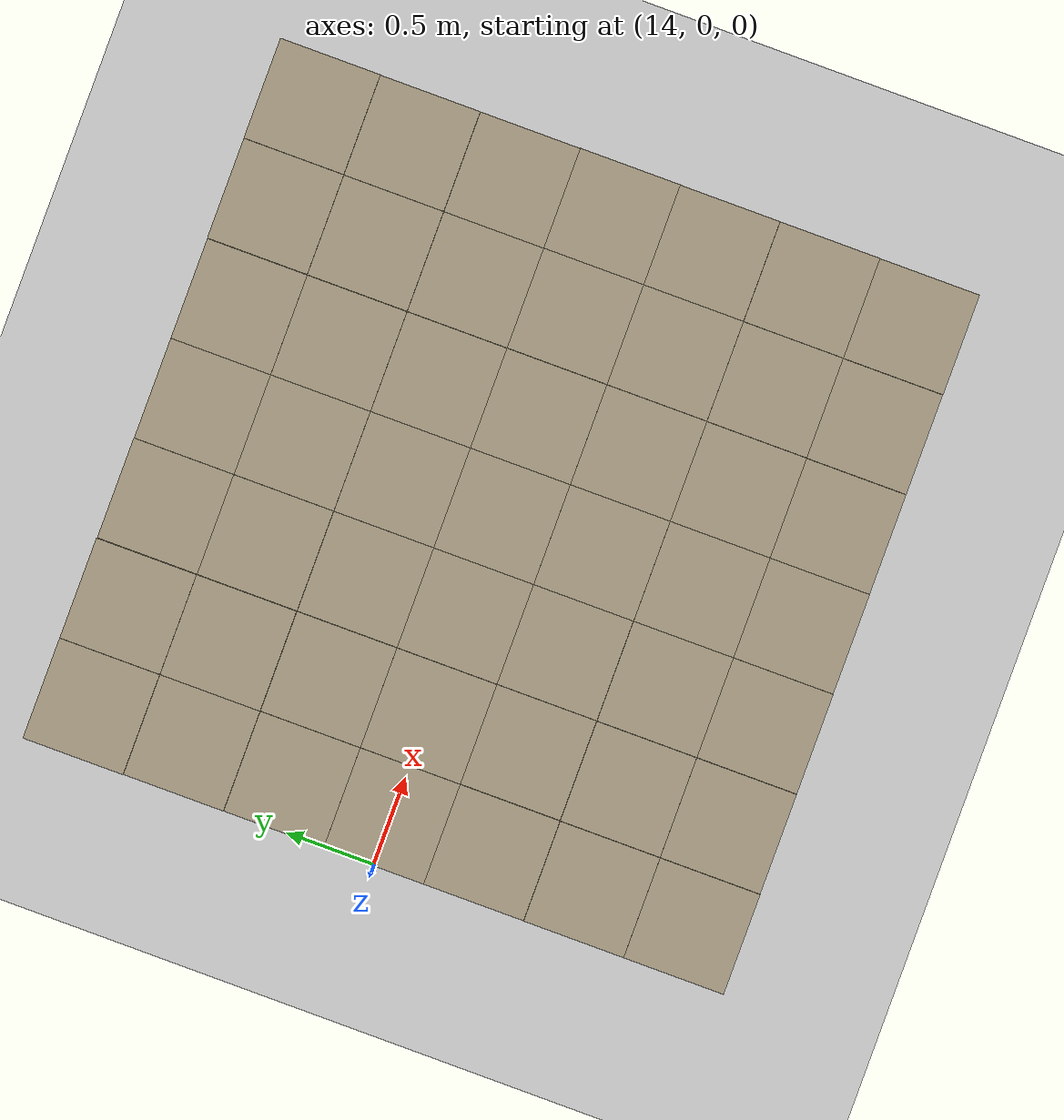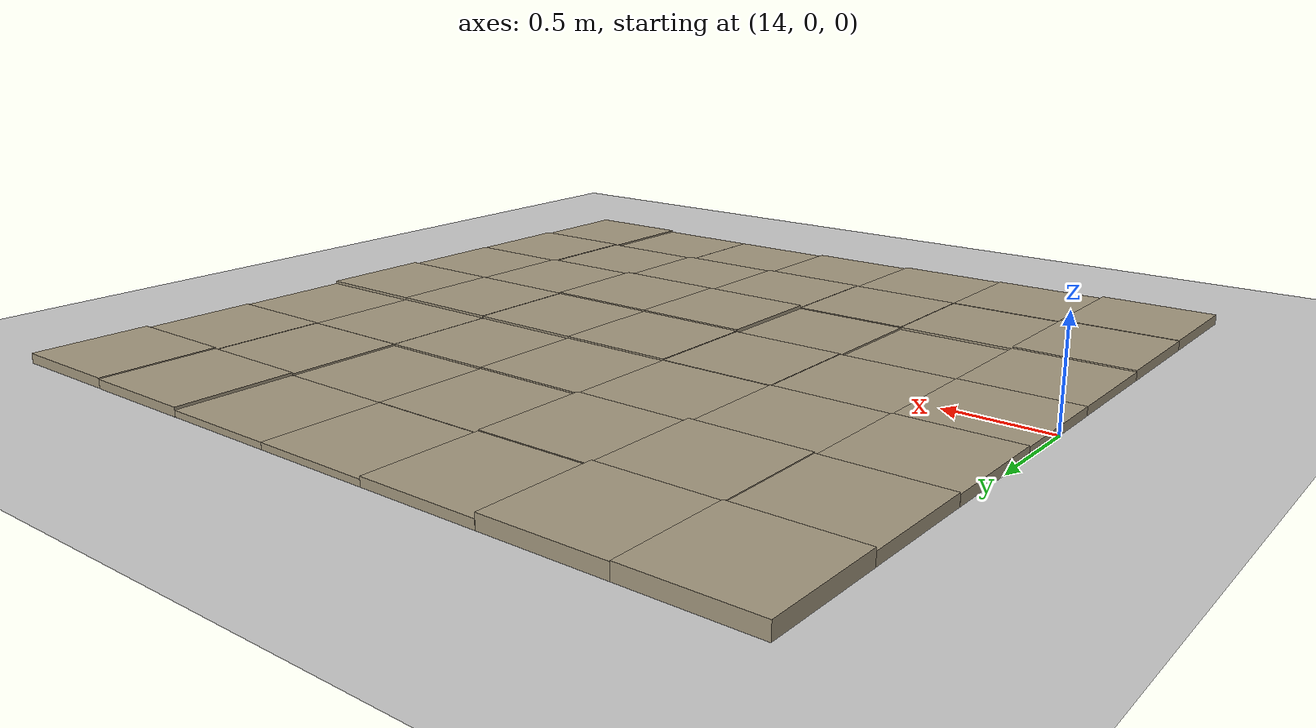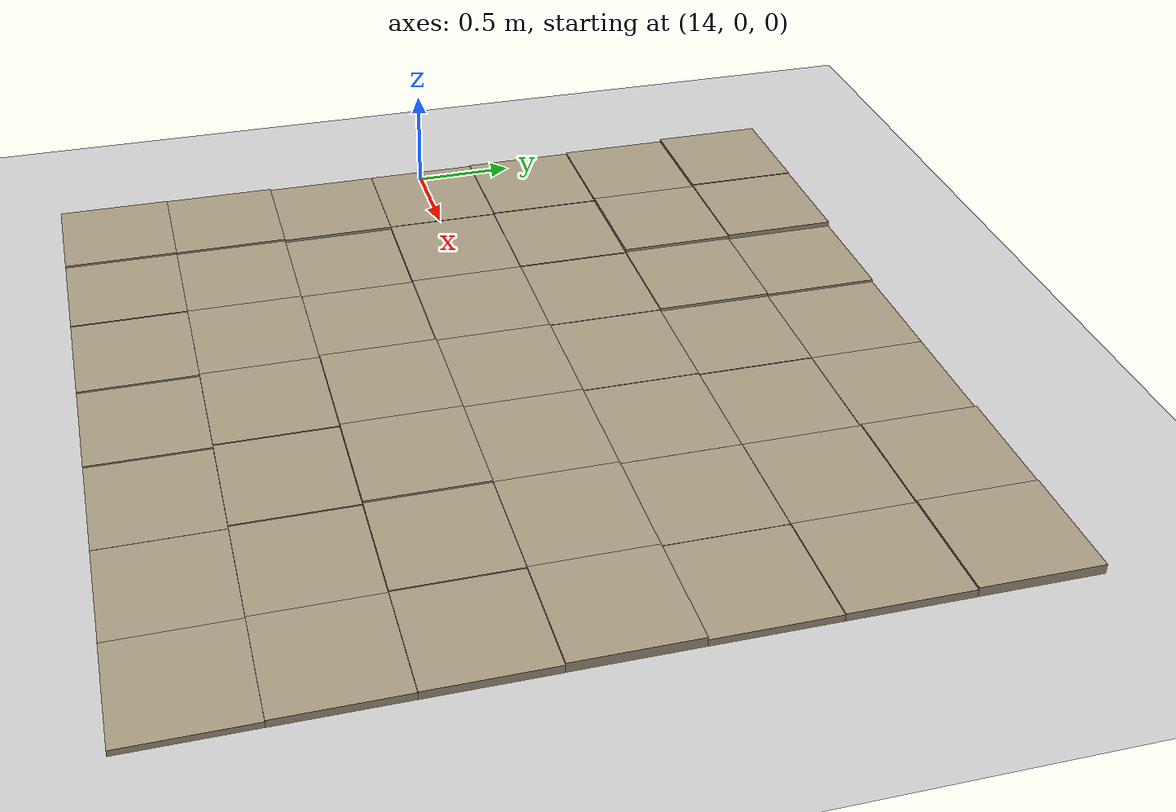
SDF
<sdf version="1.8">
 <world name="go2_rl">
  <model name="ground_plane">
   <static>true</static>
   <link name="link">
    <collision name="collision">
     <geometry><plane><normal>0 0 1</normal><size>200 200</size></plane></geometry>
     <surface><friction><ode><mu>1.0</mu><mu2>1.0</mu2></ode></friction></surface>
    </collision>
    <visual name="visual">
     <geometry><plane><normal>0 0 1</normal><size>200 200</size></plane></geometry>
     <material><ambient>0.8 0.8 0.8 1</ambient><diffuse>0.8 0.8 0.8 1</diffuse></material>
    </visual>
   </link>
  </model>
  <model name="rough_patch">
   <static>true</static>
   <link name="bump_0_0">
    <pose>14.286 -1.714 0.025 0 0 0</pose>
    <collision name="collision">
     <geometry><box><size>0.571 0.571 0.050</size></box></geometry>
     <surface><friction><ode><mu>1.0</mu><mu2>1.0</mu2></ode></friction></surface>
    </collision>
    <visual name="visual">
     <geometry><box><size>0.571 0.571 0.050</size></box></geometry>
     <material><ambient>0.65 0.6 0.5 1</ambient><diffuse>0.65 0.6 0.5 1</diffuse></material>
    </visual>
   </link>
   <link name="bump_0_1">
    <pose>14.286 -1.143 0.024 0 0 0</pose>
    <collision name="collision">
     <geometry><box><size>0.571 0.571 0.048</size></box></geometry>
     <surface><friction><ode><mu>1.0</mu><mu2>1.0</mu2></ode></friction></surface>
    </collision>
    <visual name="visual">
     <geometry><box><size>0.571 0.571 0.048</size></box></geometry>
     <material><ambient>0.65 0.6 0.5 1</ambient><diffuse>0.65 0.6 0.5 1</diffuse></material>
    </visual>
   </link>
   <link name="bump_0_2">
    <pose>14.286 -0.571 0.021 0 0 0</pose>
    <collision name="collision">
     <geometry><box><size>0.571 0.571 0.041</size></box></geometry>
     <surface><friction><ode><mu>1.0</mu><mu2>1.0</mu2></ode></friction></surface>
    </collision>
    <visual name="visual">
     <geometry><box><size>0.571 0.571 0.041</size></box></geometry>
     <material><ambient>0.65 0.6 0.5 1</ambient><diffuse>0.65 0.6 0.5 1</diffuse></material>
    </visual>
   </link>
   <link name="bump_0_3">
    <pose>14.286 0.000 0.021 0 0 0</pose>
    <collision name="collision">
     <geometry><box><size>0.571 0.571 0.043</size></box></geometry>
     <surface><friction><ode><mu>1.0</mu><mu2>1.0</mu2></ode></friction></surface>
    </collision>
    <visual name="visual">
     <geometry><box><size>0.571 0.571 0.043</size></box></geometry>
     <material><ambient>0.65 0.6 0.5 1</ambient><diffuse>0.65 0.6 0.5 1</diffuse></material>
    </visual>
   </link>
   <link name="bump_0_4">
    <pose>14.286 0.571 0.024 0 0 0</pose>
    <collision name="collision">
     <geometry><box><size>0.571 0.571 0.048</size></box></geometry>
     <surface><friction><ode><mu>1.0</mu><mu2>1.0</mu2></ode></friction></surface>
    </collision>
    <visual name="visual">
     <geometry><box><size>0.571 0.571 0.048</size></box></geometry>
     <material><ambient>0.65 0.6 0.5 1</ambient><diffuse>0.65 0.6 0.5 1</diffuse></material>
    </visual>
   </link>
   <link name="bump_0_5">
    <pose>14.286 1.143 0.028 0 0 0</pose>
    <collision name="collision">
     <geometry><box><size>0.571 0.571 0.055</size></box></geometry>
     <surface><friction><ode><mu>1.0</mu><mu2>1.0</mu2></ode></friction></surface>
    </collision>
    <visual name="visual">
     <geometry><box><size>0.571 0.571 0.055</size></box></geometry>
     <material><ambient>0.65 0.6 0.5 1</ambient><diffuse>0.65 0.6 0.5 1</diffuse></material>
    </visual>
   </link>
   <link name="bump_0_6">
    <pose>14.286 1.714 0.035 0 0 0</pose>
    <collision name="collision">
     <geometry><box><size>0.571 0.571 0.070</size></box></geometry>
     <surface><friction><ode><mu>1.0</mu><mu2>1.0</mu2></ode></friction></surface>
    </collision>
    <visual name="visual">
     <geometry><box><size>0.571 0.571 0.070</size></box></geometry>
     <material><ambient>0.65 0.6 0.5 1</ambient><diffuse>0.65 0.6 0.5 1</diffuse></material>
    </visual>
   </link>
   <link name="bump_1_0">
    <pose>14.857 -1.714 0.020 0 0 0</pose>
    <collision name="collision">
     <geometry><box><size>0.571 0.571 0.040</size></box></geometry>
     <surface><friction><ode><mu>1.0</mu><mu2>1.0</mu2></ode></friction></surface>
    </collision>
    <visual name="visual">
     <geometry><box><size>0.571 0.571 0.040</size></box></geometry>
     <material><ambient>0.65 0.6 0.5 1</ambient><diffuse>0.65 0.6 0.5 1</diffuse></material>
    </visual>
   </link>
   <link name="bump_1_1">
    <pose>14.857 -1.143 0.019 0 0 0</pose>
    <collision name="collision">
     <geometry><box><size>0.571 0.571 0.038</size></box></geometry>
     <surface><friction><ode><mu>1.0</mu><mu2>1.0</mu2></ode></friction></surface>
    </collision>
    <visual name="visual">
     <geometry><box><size>0.571 0.571 0.038</size></box></geometry>
     <material><ambient>0.65 0.6 0.5 1</ambient><diffuse>0.65 0.6 0.5 1</diffuse></material>
    </visual>
   </link>
   <link name="bump_1_2">
    <pose>14.857 -0.571 0.014 0 0 0</pose>
    <collision name="collision">
     <geometry><box><size>0.571 0.571 0.027</size></box></geometry>
     <surface><friction><ode><mu>1.0</mu><mu2>1.0</mu2></ode></friction></surface>
    </collision>
    <visual name="visual">
     <geometry><box><size>0.571 0.571 0.027</size></box></geometry>
     <material><ambient>0.65 0.6 0.5 1</ambient><diffuse>0.65 0.6 0.5 1</diffuse></material>
    </visual>
   </link>
   <link name="bump_1_3">
    <pose>14.857 0.000 0.020 0 0 0</pose>
    <collision name="collision">
     <geometry><box><size>0.571 0.571 0.040</size></box></geometry>
     <surface><friction><ode><mu>1.0</mu><mu2>1.0</mu2></ode></friction></surface>
    </collision>
    <visual name="visual">
     <geometry><box><size>0.571 0.571 0.040</size></box></geometry>
     <material><ambient>0.65 0.6 0.5 1</ambient><diffuse>0.65 0.6 0.5 1</diffuse></material>
    </visual>
   </link>
   <link name="bump_1_4">
    <pose>14.857 0.571 0.022 0 0 0</pose>
    <collision name="collision">
     <geometry><box><size>0.571 0.571 0.045</size></box></geometry>
     <surface><friction><ode><mu>1.0</mu><mu2>1.0</mu2></ode></friction></surface>
    </collision>
    <visual name="visual">
     <geometry><box><size>0.571 0.571 0.045</size></box></geometry>
     <material><ambient>0.65 0.6 0.5 1</ambient><diffuse>0.65 0.6 0.5 1</diffuse></material>
    </visual>
   </link>
   <link name="bump_1_5">
    <pose>14.857 1.143 0.030 0 0 0</pose>
    <collision name="collision">
     <geometry><box><size>0.571 0.571 0.060</size></box></geometry>
     <surface><friction><ode><mu>1.0</mu><mu2>1.0</mu2></ode></friction></surface>
    </collision>
    <visual name="visual">
     <geometry><box><size>0.571 0.571 0.060</size></box></geometry>
     <material><ambient>0.65 0.6 0.5 1</ambient><diffuse>0.65 0.6 0.5 1</diffuse></material>
    </visual>
   </link>
   <link name="bump_1_6">
    <pose>14.857 1.714 0.033 0 0 0</pose>
    <collision name="collision">
     <geometry><box><size>0.571 0.571 0.066</size></box></geometry>
     <surface><friction><ode><mu>1.0</mu><mu2>1.0</mu2></ode></friction></surface>
    </collision>
    <visual name="visual">
     <geometry><box><size>0.571 0.571 0.066</size></box></geometry>
     <material><ambient>0.65 0.6 0.5 1</ambient><diffuse>0.65 0.6 0.5 1</diffuse></material>
    </visual>
   </link>
   <link name="bump_2_0">
    <pose>15.429 -1.714 0.018 0 0 0</pose>
    <collision name="collision">
     <geometry><box><size>0.571 0.571 0.036</size></box></geometry>
     <surface><friction><ode><mu>1.0</mu><mu2>1.0</mu2></ode></friction></surface>
    </collision>
    <visual name="visual">
     <geometry><box><size>0.571 0.571 0.036</size></box></geometry>
     <material><ambient>0.65 0.6 0.5 1</ambient><diffuse>0.65 0.6 0.5 1</diffuse></material>
    </visual>
   </link>
   <link name="bump_2_1">
    <pose>15.429 -1.143 0.020 0 0 0</pose>
    <collision name="collision">
     <geometry><box><size>0.571 0.571 0.040</size></box></geometry>
     <surface><friction><ode><mu>1.0</mu><mu2>1.0</mu2></ode></friction></surface>
    </collision>
    <visual name="visual">
     <geometry><box><size>0.571 0.571 0.040</size></box></geometry>
     <material><ambient>0.65 0.6 0.5 1</ambient><diffuse>0.65 0.6 0.5 1</diffuse></material>
    </visual>
   </link>
   <link name="bump_2_2">
    <pose>15.429 -0.571 0.018 0 0 0</pose>
    <collision name="collision">
     <geometry><box><size>0.571 0.571 0.035</size></box></geometry>
     <surface><friction><ode><mu>1.0</mu><mu2>1.0</mu2></ode></friction></surface>
    </collision>
    <visual name="visual">
     <geometry><box><size>0.571 0.571 0.035</size></box></geometry>
     <material><ambient>0.65 0.6 0.5 1</ambient><diffuse>0.65 0.6 0.5 1</diffuse></material>
    </visual>
   </link>
   <link name="bump_2_3">
    <pose>15.429 0.000 0.021 0 0 0</pose>
    <collision name="collision">
     <geometry><box><size>0.571 0.571 0.043</size></box></geometry>
     <surface><friction><ode><mu>1.0</mu><mu2>1.0</mu2></ode></friction></surface>
    </collision>
    <visual name="visual">
     <geometry><box><size>0.571 0.571 0.043</size></box></geometry>
     <material><ambient>0.65 0.6 0.5 1</ambient><diffuse>0.65 0.6 0.5 1</diffuse></material>
    </visual>
   </link>
   <link name="bump_2_4">
    <pose>15.429 0.571 0.020 0 0 0</pose>
    <collision name="collision">
     <geometry><box><size>0.571 0.571 0.041</size></box></geometry>
     <surface><friction><ode><mu>1.0</mu><mu2>1.0</mu2></ode></friction></surface>
    </collision>
    <visual name="visual">
     <geometry><box><size>0.571 0.571 0.041</size></box></geometry>
     <material><ambient>0.65 0.6 0.5 1</ambient><diffuse>0.65 0.6 0.5 1</diffuse></material>
    </visual>
   </link>
   <link name="bump_2_5">
    <pose>15.429 1.143 0.023 0 0 0</pose>
    <collision name="collision">
     <geometry><box><size>0.571 0.571 0.046</size></box></geometry>
     <surface><friction><ode><mu>1.0</mu><mu2>1.0</mu2></ode></friction></surface>
    </collision>
    <visual name="visual">
     <geometry><box><size>0.571 0.571 0.046</size></box></geometry>
     <material><ambient>0.65 0.6 0.5 1</ambient><diffuse>0.65 0.6 0.5 1</diffuse></material>
    </visual>
   </link>
   <link name="bump_2_6">
    <pose>15.429 1.714 0.021 0 0 0</pose>
    <collision name="collision">
     <geometry><box><size>0.571 0.571 0.042</size></box></geometry>
     <surface><friction><ode><mu>1.0</mu><mu2>1.0</mu2></ode></friction></surface>
    </collision>
    <visual name="visual">
     <geometry><box><size>0.571 0.571 0.042</size></box></geometry>
     <material><ambient>0.65 0.6 0.5 1</ambient><diffuse>0.65 0.6 0.5 1</diffuse></material>
    </visual>
   </link>
   <link name="bump_3_0">
    <pose>16.000 -1.714 0.014 0 0 0</pose>
    <collision name="collision">
     <geometry><box><size>0.571 0.571 0.027</size></box></geometry>
     <surface><friction><ode><mu>1.0</mu><mu2>1.0</mu2></ode></friction></surface>
    </collision>
    <visual name="visual">
     <geometry><box><size>0.571 0.571 0.027</size></box></geometry>
     <material><ambient>0.65 0.6 0.5 1</ambient><diffuse>0.65 0.6 0.5 1</diffuse></material>
    </visual>
   </link>
   <link name="bump_3_1">
    <pose>16.000 -1.143 0.021 0 0 0</pose>
    <collision name="collision">
     <geometry><box><size>0.571 0.571 0.042</size></box></geometry>
     <surface><friction><ode><mu>1.0</mu><mu2>1.0</mu2></ode></friction></surface>
    </collision>
    <visual name="visual">
     <geometry><box><size>0.571 0.571 0.042</size></box></geometry>
     <material><ambient>0.65 0.6 0.5 1</ambient><diffuse>0.65 0.6 0.5 1</diffuse></material>
    </visual>
   </link>
   <link name="bump_3_2">
    <pose>16.000 -0.571 0.026 0 0 0</pose>
    <collision name="collision">
     <geometry><box><size>0.571 0.571 0.053</size></box></geometry>
     <surface><friction><ode><mu>1.0</mu><mu2>1.0</mu2></ode></friction></surface>
    </collision>
    <visual name="visual">
     <geometry><box><size>0.571 0.571 0.053</size></box></geometry>
     <material><ambient>0.65 0.6 0.5 1</ambient><diffuse>0.65 0.6 0.5 1</diffuse></material>
    </visual>
   </link>
   <link name="bump_3_3">
    <pose>16.000 0.000 0.023 0 0 0</pose>
    <collision name="collision">
     <geometry><box><size>0.571 0.571 0.046</size></box></geometry>
     <surface><friction><ode><mu>1.0</mu><mu2>1.0</mu2></ode></friction></surface>
    </collision>
    <visual name="visual">
     <geometry><box><size>0.571 0.571 0.046</size></box></geometry>
     <material><ambient>0.65 0.6 0.5 1</ambient><diffuse>0.65 0.6 0.5 1</diffuse></material>
    </visual>
   </link>
   <link name="bump_3_4">
    <pose>16.000 0.571 0.019 0 0 0</pose>
    <collision name="collision">
     <geometry><box><size>0.571 0.571 0.038</size></box></geometry>
     <surface><friction><ode><mu>1.0</mu><mu2>1.0</mu2></ode></friction></surface>
    </collision>
    <visual name="visual">
     <geometry><box><size>0.571 0.571 0.038</size></box></geometry>
     <material><ambient>0.65 0.6 0.5 1</ambient><diffuse>0.65 0.6 0.5 1</diffuse></material>
    </visual>
   </link>
   <link name="bump_3_5">
    <pose>16.000 1.143 0.016 0 0 0</pose>
    <collision name="collision">
     <geometry><box><size>0.571 0.571 0.031</size></box></geometry>
     <surface><friction><ode><mu>1.0</mu><mu2>1.0</mu2></ode></friction></surface>
    </collision>
    <visual name="visual">
     <geometry><box><size>0.571 0.571 0.031</size></box></geometry>
     <material><ambient>0.65 0.6 0.5 1</ambient><diffuse>0.65 0.6 0.5 1</diffuse></material>
    </visual>
   </link>
   <link name="bump_3_6">
    <pose>16.000 1.714 0.015 0 0 0</pose>
    <collision name="collision">
     <geometry><box><size>0.571 0.571 0.030</size></box></geometry>
     <surface><friction><ode><mu>1.0</mu><mu2>1.0</mu2></ode></friction></surface>
    </collision>
    <visual name="visual">
     <geometry><box><size>0.571 0.571 0.030</size></box></geometry>
     <material><ambient>0.65 0.6 0.5 1</ambient><diffuse>0.65 0.6 0.5 1</diffuse></material>
    </visual>
   </link>
   <link name="bump_4_0">
    <pose>16.571 -1.714 0.010 0 0 0</pose>
    <collision name="collision">
     <geometry><box><size>0.571 0.571 0.020</size></box></geometry>
     <surface><friction><ode><mu>1.0</mu><mu2>1.0</mu2></ode></friction></surface>
    </collision>
    <visual name="visual">
     <geometry><box><size>0.571 0.571 0.020</size></box></geometry>
     <material><ambient>0.65 0.6 0.5 1</ambient><diffuse>0.65 0.6 0.5 1</diffuse></material>
    </visual>
   </link>
   <link name="bump_4_1">
    <pose>16.571 -1.143 0.019 0 0 0</pose>
    <collision name="collision">
     <geometry><box><size>0.571 0.571 0.037</size></box></geometry>
     <surface><friction><ode><mu>1.0</mu><mu2>1.0</mu2></ode></friction></surface>
    </collision>
    <visual name="visual">
     <geometry><box><size>0.571 0.571 0.037</size></box></geometry>
     <material><ambient>0.65 0.6 0.5 1</ambient><diffuse>0.65 0.6 0.5 1</diffuse></material>
    </visual>
   </link>
   <link name="bump_4_2">
    <pose>16.571 -0.571 0.026 0 0 0</pose>
    <collision name="collision">
     <geometry><box><size>0.571 0.571 0.053</size></box></geometry>
     <surface><friction><ode><mu>1.0</mu><mu2>1.0</mu2></ode></friction></surface>
    </collision>
    <visual name="visual">
     <geometry><box><size>0.571 0.571 0.053</size></box></geometry>
     <material><ambient>0.65 0.6 0.5 1</ambient><diffuse>0.65 0.6 0.5 1</diffuse></material>
    </visual>
   </link>
   <link name="bump_4_3">
    <pose>16.571 0.000 0.023 0 0 0</pose>
    <collision name="collision">
     <geometry><box><size>0.571 0.571 0.046</size></box></geometry>
     <surface><friction><ode><mu>1.0</mu><mu2>1.0</mu2></ode></friction></surface>
    </collision>
    <visual name="visual">
     <geometry><box><size>0.571 0.571 0.046</size></box></geometry>
     <material><ambient>0.65 0.6 0.5 1</ambient><diffuse>0.65 0.6 0.5 1</diffuse></material>
    </visual>
   </link>
   <link name="bump_4_4">
    <pose>16.571 0.571 0.018 0 0 0</pose>
    <collision name="collision">
     <geometry><box><size>0.571 0.571 0.035</size></box></geometry>
     <surface><friction><ode><mu>1.0</mu><mu2>1.0</mu2></ode></friction></surface>
    </collision>
    <visual name="visual">
     <geometry><box><size>0.571 0.571 0.035</size></box></geometry>
     <material><ambient>0.65 0.6 0.5 1</ambient><diffuse>0.65 0.6 0.5 1</diffuse></material>
    </visual>
   </link>
   <link name="bump_4_5">
    <pose>16.571 1.143 0.014 0 0 0</pose>
    <collision name="collision">
     <geometry><box><size>0.571 0.571 0.028</size></box></geometry>
     <surface><friction><ode><mu>1.0</mu><mu2>1.0</mu2></ode></friction></surface>
    </collision>
    <visual name="visual">
     <geometry><box><size>0.571 0.571 0.028</size></box></geometry>
     <material><ambient>0.65 0.6 0.5 1</ambient><diffuse>0.65 0.6 0.5 1</diffuse></material>
    </visual>
   </link>
   <link name="bump_4_6">
    <pose>16.571 1.714 0.015 0 0 0</pose>
    <collision name="collision">
     <geometry><box><size>0.571 0.571 0.030</size></box></geometry>
     <surface><friction><ode><mu>1.0</mu><mu2>1.0</mu2></ode></friction></surface>
    </collision>
    <visual name="visual">
     <geometry><box><size>0.571 0.571 0.030</size></box></geometry>
     <material><ambient>0.65 0.6 0.5 1</ambient><diffuse>0.65 0.6 0.5 1</diffuse></material>
    </visual>
   </link>
   <link name="bump_5_0">
    <pose>17.143 -1.714 0.010 0 0 0</pose>
    <collision name="collision">
     <geometry><box><size>0.571 0.571 0.020</size></box></geometry>
     <surface><friction><ode><mu>1.0</mu><mu2>1.0</mu2></ode></friction></surface>
    </collision>
    <visual name="visual">
     <geometry><box><size>0.571 0.571 0.020</size></box></geometry>
     <material><ambient>0.65 0.6 0.5 1</ambient><diffuse>0.65 0.6 0.5 1</diffuse></material>
    </visual>
   </link>
   <link name="bump_5_1">
    <pose>17.143 -1.143 0.016 0 0 0</pose>
    <collision name="collision">
     <geometry><box><size>0.571 0.571 0.033</size></box></geometry>
     <surface><friction><ode><mu>1.0</mu><mu2>1.0</mu2></ode></friction></surface>
    </collision>
    <visual name="visual">
     <geometry><box><size>0.571 0.571 0.033</size></box></geometry>
     <material><ambient>0.65 0.6 0.5 1</ambient><diffuse>0.65 0.6 0.5 1</diffuse></material>
    </visual>
   </link>
   <link name="bump_5_2">
    <pose>17.143 -0.571 0.022 0 0 0</pose>
    <collision name="collision">
     <geometry><box><size>0.571 0.571 0.044</size></box></geometry>
     <surface><friction><ode><mu>1.0</mu><mu2>1.0</mu2></ode></friction></surface>
    </collision>
    <visual name="visual">
     <geometry><box><size>0.571 0.571 0.044</size></box></geometry>
     <material><ambient>0.65 0.6 0.5 1</ambient><diffuse>0.65 0.6 0.5 1</diffuse></material>
    </visual>
   </link>
   <link name="bump_5_3">
    <pose>17.143 0.000 0.024 0 0 0</pose>
    <collision name="collision">
     <geometry><box><size>0.571 0.571 0.047</size></box></geometry>
     <surface><friction><ode><mu>1.0</mu><mu2>1.0</mu2></ode></friction></surface>
    </collision>
    <visual name="visual">
     <geometry><box><size>0.571 0.571 0.047</size></box></geometry>
     <material><ambient>0.65 0.6 0.5 1</ambient><diffuse>0.65 0.6 0.5 1</diffuse></material>
    </visual>
   </link>
   <link name="bump_5_4">
    <pose>17.143 0.571 0.018 0 0 0</pose>
    <collision name="collision">
     <geometry><box><size>0.571 0.571 0.036</size></box></geometry>
     <surface><friction><ode><mu>1.0</mu><mu2>1.0</mu2></ode></friction></surface>
    </collision>
    <visual name="visual">
     <geometry><box><size>0.571 0.571 0.036</size></box></geometry>
     <material><ambient>0.65 0.6 0.5 1</ambient><diffuse>0.65 0.6 0.5 1</diffuse></material>
    </visual>
   </link>
   <link name="bump_5_5">
    <pose>17.143 1.143 0.018 0 0 0</pose>
    <collision name="collision">
     <geometry><box><size>0.571 0.571 0.036</size></box></geometry>
     <surface><friction><ode><mu>1.0</mu><mu2>1.0</mu2></ode></friction></surface>
    </collision>
    <visual name="visual">
     <geometry><box><size>0.571 0.571 0.036</size></box></geometry>
     <material><ambient>0.65 0.6 0.5 1</ambient><diffuse>0.65 0.6 0.5 1</diffuse></material>
    </visual>
   </link>
   <link name="bump_5_6">
    <pose>17.143 1.714 0.021 0 0 0</pose>
    <collision name="collision">
     <geometry><box><size>0.571 0.571 0.043</size></box></geometry>
     <surface><friction><ode><mu>1.0</mu><mu2>1.0</mu2></ode></friction></surface>
    </collision>
    <visual name="visual">
     <geometry><box><size>0.571 0.571 0.043</size></box></geometry>
     <material><ambient>0.65 0.6 0.5 1</ambient><diffuse>0.65 0.6 0.5 1</diffuse></material>
    </visual>
   </link>
   <link name="bump_6_0">
    <pose>17.714 -1.714 0.015 0 0 0</pose>
    <collision name="collision">
     <geometry><box><size>0.571 0.571 0.029</size></box></geometry>
     <surface><friction><ode><mu>1.0</mu><mu2>1.0</mu2></ode></friction></surface>
    </collision>
    <visual name="visual">
     <geometry><box><size>0.571 0.571 0.029</size></box></geometry>
     <material><ambient>0.65 0.6 0.5 1</ambient><diffuse>0.65 0.6 0.5 1</diffuse></material>
    </visual>
   </link>
   <link name="bump_6_1">
    <pose>17.714 -1.143 0.018 0 0 0</pose>
    <collision name="collision">
     <geometry><box><size>0.571 0.571 0.036</size></box></geometry>
     <surface><friction><ode><mu>1.0</mu><mu2>1.0</mu2></ode></friction></surface>
    </collision>
    <visual name="visual">
     <geometry><box><size>0.571 0.571 0.036</size></box></geometry>
     <material><ambient>0.65 0.6 0.5 1</ambient><diffuse>0.65 0.6 0.5 1</diffuse></material>
    </visual>
   </link>
   <link name="bump_6_2">
    <pose>17.714 -0.571 0.019 0 0 0</pose>
    <collision name="collision">
     <geometry><box><size>0.571 0.571 0.039</size></box></geometry>
     <surface><friction><ode><mu>1.0</mu><mu2>1.0</mu2></ode></friction></surface>
    </collision>
    <visual name="visual">
     <geometry><box><size>0.571 0.571 0.039</size></box></geometry>
     <material><ambient>0.65 0.6 0.5 1</ambient><diffuse>0.65 0.6 0.5 1</diffuse></material>
    </visual>
   </link>
   <link name="bump_6_3">
    <pose>17.714 0.000 0.024 0 0 0</pose>
    <collision name="collision">
     <geometry><box><size>0.571 0.571 0.047</size></box></geometry>
     <surface><friction><ode><mu>1.0</mu><mu2>1.0</mu2></ode></friction></surface>
    </collision>
    <visual name="visual">
     <geometry><box><size>0.571 0.571 0.047</size></box></geometry>
     <material><ambient>0.65 0.6 0.5 1</ambient><diffuse>0.65 0.6 0.5 1</diffuse></material>
    </visual>
   </link>
   <link name="bump_6_4">
    <pose>17.714 0.571 0.017 0 0 0</pose>
    <collision name="collision">
     <geometry><box><size>0.571 0.571 0.034</size></box></geometry>
     <surface><friction><ode><mu>1.0</mu><mu2>1.0</mu2></ode></friction></surface>
    </collision>
    <visual name="visual">
     <geometry><box><size>0.571 0.571 0.034</size></box></geometry>
     <material><ambient>0.65 0.6 0.5 1</ambient><diffuse>0.65 0.6 0.5 1</diffuse></material>
    </visual>
   </link>
   <link name="bump_6_5">
    <pose>17.714 1.143 0.019 0 0 0</pose>
    <collision name="collision">
     <geometry><box><size>0.571 0.571 0.038</size></box></geometry>
     <surface><friction><ode><mu>1.0</mu><mu2>1.0</mu2></ode></friction></surface>
    </collision>
    <visual name="visual">
     <geometry><box><size>0.571 0.571 0.038</size></box></geometry>
     <material><ambient>0.65 0.6 0.5 1</ambient><diffuse>0.65 0.6 0.5 1</diffuse></material>
    </visual>
   </link>
   <link name="bump_6_6">
    <pose>17.714 1.714 0.024 0 0 0</pose>
    <collision name="collision">
     <geometry><box><size>0.571 0.571 0.047</size></box></geometry>
     <surface><friction><ode><mu>1.0</mu><mu2>1.0</mu2></ode></friction></surface>
    </collision>
    <visual name="visual">
     <geometry><box><size>0.571 0.571 0.047</size></box></geometry>
     <material><ambient>0.65 0.6 0.5 1</ambient><diffuse>0.65 0.6 0.5 1</diffuse></material>
    </visual>
   </link>
  </model>
 </world>
</sdf>
